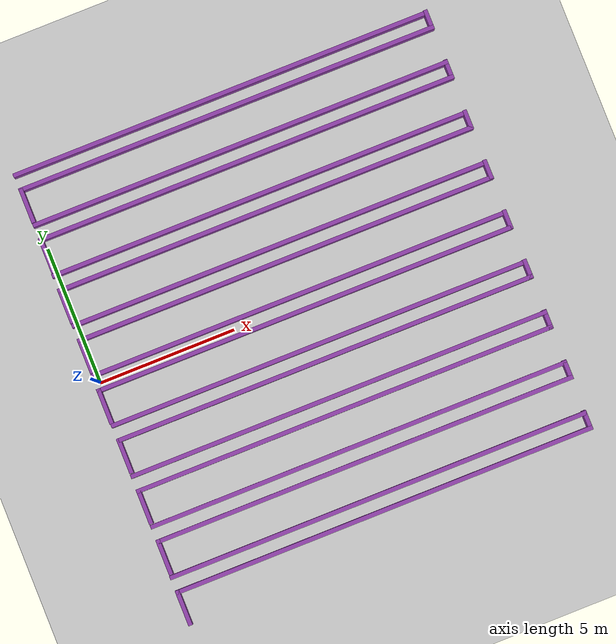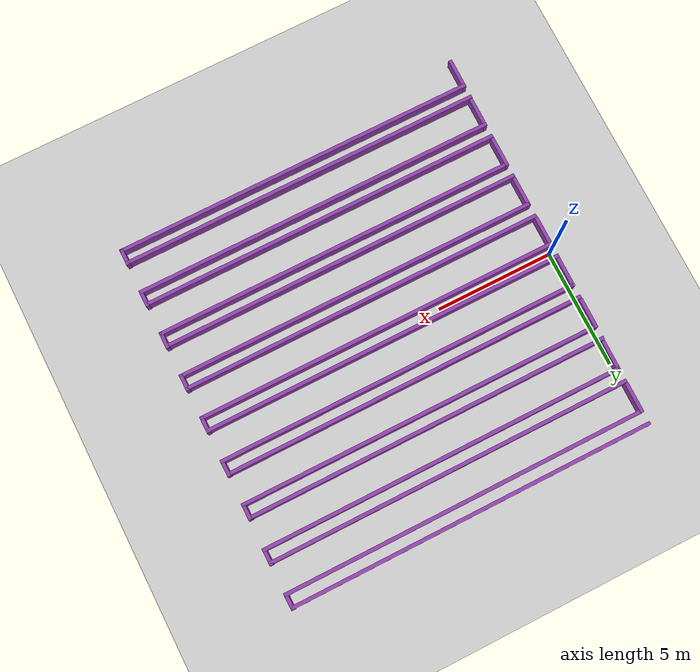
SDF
<sdf version="1.7">
 <world name="default">
  <light name="sun" type="directional">
   <pose>0 0 10 0 -0 0</pose>
   <diffuse>0.8 0.8 0.8 1</diffuse>
   <specular>0.2 0.2 0.2 1</specular>
   <attenuation>
    <range>1000</range>
    <constant>0.9</constant>
    <linear>0.01</linear>
    <quadratic>0.001</quadratic>
   </attenuation>
   <direction>-0.5 0.1 -0.9</direction>
   <spot><inner_angle>0</inner_angle><outer_angle>0</outer_angle><falloff>0</falloff></spot>
  </light>
  <model name="ground_plane">
   <static>1</static>
   <link name="link">
    <collision name="collision">
     <geometry><plane><normal>0 0 1</normal><size>100 100</size></plane></geometry>
     <surface>
      <contact><collide_bitmask>65535</collide_bitmask></contact>
      <friction><ode><mu>100</mu><mu2>50</mu2></ode></friction>
     </surface>
    </collision>
    <visual name="visual">
     <cast_shadows>0</cast_shadows>
     <geometry><plane><normal>0 0 1</normal><size>100 100</size></plane></geometry>
     <material>
      <script><uri>file://media/materials/scripts/gazebo.material</uri><name>Gazebo/Grey</name></script>
     </material>
    </visual>
   </link>
  </model>
  <gravity>0 0 -9.8</gravity>
  <magnetic_field>6e-06 2.3e-05 -4.2e-05</magnetic_field>
  <atmosphere type="adiabatic"/>
  <physics type="ode">
   <max_step_size>0.001</max_step_size>
   <real_time_factor>1</real_time_factor>
   <real_time_update_rate>1000</real_time_update_rate>
  </physics>
  <scene><ambient>0.4 0.4 0.4 1</ambient><background>0.7 0.7 0.7 1</background><shadows>1</shadows></scene>
  <audio><device>default</device></audio>
  <spherical_coordinates>
   <surface_model>EARTH_WGS84</surface_model>
   <latitude_deg>0</latitude_deg>
   <longitude_deg>0</longitude_deg>
   <elevation>0</elevation>
   <heading_deg>0</heading_deg>
  </spherical_coordinates>
  <model name="40cm_koridor">
   <pose>7.55598 -0.555984 0 0 -0 0</pose>
   <link name="Wall_2">
    <collision name="Wall_2_Collision">
     <geometry><box><size>15.513 0.15 0.6</size></box></geometry>
     <pose>0 0 0.3 0 -0 0</pose>
    </collision>
    <visual name="Wall_2_Visual">
     <pose>0 0 0.3 0 -0 0</pose>
     <geometry><box><size>15.513 0.15 0.6</size></box></geometry>
     <material>
      <script><uri>file://media/materials/scripts/gazebo.material</uri><name>Gazebo/Grey</name></script>
      <ambient>0.568627 0.254902 0.67451 1</ambient>
     </material>
     <meta><layer>0</layer></meta>
    </visual>
    <pose>0.0045 0.840984 0 0 -0 -3.14159</pose>
   </link>
   <link name="Wall_4">
    <collision name="Wall_4_Collision">
     <geometry><box><size>15.522 0.15 0.6</size></box></geometry>
     <pose>0 0 0.3 0 -0 0</pose>
    </collision>
    <visual name="Wall_4_Visual">
     <pose>0 0 0.3 0 -0 0</pose>
     <geometry><box><size>15.522 0.15 0.6</size></box></geometry>
     <material>
      <script><uri>file://media/materials/scripts/gazebo.material</uri><name>Gazebo/Grey</name></script>
      <ambient>0.568627 0.254902 0.67451 1</ambient>
     </material>
     <meta><layer>0</layer></meta>
    </visual>
    <pose>0 0.285984 0 0 -0 0</pose>
   </link>
   <link name="Wall_6">
    <collision name="Wall_6_Collision">
     <geometry><box><size>0.705 0.15 0.6</size></box></geometry>
     <pose>0 0 0.3 0 -0 0</pose>
    </collision>
    <visual name="Wall_6_Visual">
     <pose>0 0 0.3 0 -0 0</pose>
     <geometry><box><size>0.705 0.15 0.6</size></box></geometry>
     <material>
      <script><uri>file://media/materials/scripts/gazebo.material</uri><name>Gazebo/Grey</name></script>
      <ambient>0.568627 0.254902 0.67451 1</ambient>
     </material>
     <meta><layer>0</layer></meta>
    </visual>
    <pose>7.68598 0.585787 0 0 -0 -1.5708</pose>
   </link>
   <link name="Wall_9">
    <collision name="Wall_9_Collision">
     <geometry><box><size>1.29954 0.15 0.6</size></box></geometry>
     <pose>0 0 0.3 0 -0 0</pose>
    </collision>
    <visual name="Wall_9_Visual">
     <pose>0 0 0.3 0 -0 0</pose>
     <geometry><box><size>1.29954 0.15 0.6</size></box></geometry>
     <material>
      <script><uri>file://media/materials/scripts/gazebo.material</uri><name>Gazebo/Grey</name></script>
      <ambient>0.568627 0.254902 0.67451 1</ambient>
     </material>
     <meta><layer>0</layer></meta>
    </visual>
    <pose>-7.68598 -0.288516 0 0 -0 -1.5708</pose>
   </link>
   <static>1</static>
  </model>
  <model name="40cm_koridor_clone">
   <pose>7.56852 -2.41023 0 0 -0 0</pose>
   <link name="Wall_2">
    <collision name="Wall_2_Collision">
     <geometry><box><size>15.513 0.15 0.6</size></box></geometry>
     <pose>0 0 0.3 0 -0 0</pose>
    </collision>
    <visual name="Wall_2_Visual">
     <pose>0 0 0.3 0 -0 0</pose>
     <geometry><box><size>15.513 0.15 0.6</size></box></geometry>
     <material>
      <script><uri>file://media/materials/scripts/gazebo.material</uri><name>Gazebo/Grey</name></script>
      <ambient>0.568627 0.254902 0.67451 1</ambient>
     </material>
     <meta><layer>0</layer></meta>
    </visual>
    <pose>0.0045 0.840984 0 0 -0 -3.14159</pose>
   </link>
   <link name="Wall_4">
    <collision name="Wall_4_Collision">
     <geometry><box><size>15.522 0.15 0.6</size></box></geometry>
     <pose>0 0 0.3 0 -0 0</pose>
    </collision>
    <visual name="Wall_4_Visual">
     <pose>0 0 0.3 0 -0 0</pose>
     <geometry><box><size>15.522 0.15 0.6</size></box></geometry>
     <material>
      <script><uri>file://media/materials/scripts/gazebo.material</uri><name>Gazebo/Grey</name></script>
      <ambient>0.568627 0.254902 0.67451 1</ambient>
     </material>
     <meta><layer>0</layer></meta>
    </visual>
    <pose>0 0.285984 0 0 -0 0</pose>
   </link>
   <link name="Wall_6">
    <collision name="Wall_6_Collision">
     <geometry><box><size>0.705 0.15 0.6</size></box></geometry>
     <pose>0 0 0.3 0 -0 0</pose>
    </collision>
    <visual name="Wall_6_Visual">
     <pose>0 0 0.3 0 -0 0</pose>
     <geometry><box><size>0.705 0.15 0.6</size></box></geometry>
     <material>
      <script><uri>file://media/materials/scripts/gazebo.material</uri><name>Gazebo/Grey</name></script>
      <ambient>0.568627 0.254902 0.67451 1</ambient>
     </material>
     <meta><layer>0</layer></meta>
    </visual>
    <pose>7.68598 0.585787 0 0 -0 -1.5708</pose>
   </link>
   <link name="Wall_9">
    <collision name="Wall_9_Collision">
     <geometry><box><size>1.29954 0.15 0.6</size></box></geometry>
     <pose>0 0 0.3 0 -0 0</pose>
    </collision>
    <visual name="Wall_9_Visual">
     <pose>0 0 0.3 0 -0 0</pose>
     <geometry><box><size>1.29954 0.15 0.6</size></box></geometry>
     <material>
      <script><uri>file://media/materials/scripts/gazebo.material</uri><name>Gazebo/Grey</name></script>
      <ambient>0.568627 0.254902 0.67451 1</ambient>
     </material>
     <meta><layer>0</layer></meta>
    </visual>
    <pose>-7.68598 -0.288516 0 0 -0 -1.5708</pose>
   </link>
   <static>1</static>
  </model>
  <model name="40cm_koridor_clone_clone">
   <pose>7.55711 -4.2896 0 0 -0 0</pose>
   <link name="Wall_2">
    <collision name="Wall_2_Collision">
     <geometry><box><size>15.513 0.15 0.6</size></box></geometry>
     <pose>0 0 0.3 0 -0 0</pose>
    </collision>
    <visual name="Wall_2_Visual">
     <pose>0 0 0.3 0 -0 0</pose>
     <geometry><box><size>15.513 0.15 0.6</size></box></geometry>
     <material>
      <script><uri>file://media/materials/scripts/gazebo.material</uri><name>Gazebo/Grey</name></script>
      <ambient>0.568627 0.254902 0.67451 1</ambient>
     </material>
     <meta><layer>0</layer></meta>
    </visual>
    <pose>0.0045 0.840984 0 0 -0 -3.14159</pose>
   </link>
   <link name="Wall_4">
    <collision name="Wall_4_Collision">
     <geometry><box><size>15.522 0.15 0.6</size></box></geometry>
     <pose>0 0 0.3 0 -0 0</pose>
    </collision>
    <visual name="Wall_4_Visual">
     <pose>0 0 0.3 0 -0 0</pose>
     <geometry><box><size>15.522 0.15 0.6</size></box></geometry>
     <material>
      <script><uri>file://media/materials/scripts/gazebo.material</uri><name>Gazebo/Grey</name></script>
      <ambient>0.568627 0.254902 0.67451 1</ambient>
     </material>
     <meta><layer>0</layer></meta>
    </visual>
    <pose>0 0.285984 0 0 -0 0</pose>
   </link>
   <link name="Wall_6">
    <collision name="Wall_6_Collision">
     <geometry><box><size>0.705 0.15 0.6</size></box></geometry>
     <pose>0 0 0.3 0 -0 0</pose>
    </collision>
    <visual name="Wall_6_Visual">
     <pose>0 0 0.3 0 -0 0</pose>
     <geometry><box><size>0.705 0.15 0.6</size></box></geometry>
     <material>
      <script><uri>file://media/materials/scripts/gazebo.material</uri><name>Gazebo/Grey</name></script>
      <ambient>0.568627 0.254902 0.67451 1</ambient>
     </material>
     <meta><layer>0</layer></meta>
    </visual>
    <pose>7.68598 0.585787 0 0 -0 -1.5708</pose>
   </link>
   <link name="Wall_9">
    <collision name="Wall_9_Collision">
     <geometry><box><size>1.29954 0.15 0.6</size></box></geometry>
     <pose>0 0 0.3 0 -0 0</pose>
    </collision>
    <visual name="Wall_9_Visual">
     <pose>0 0 0.3 0 -0 0</pose>
     <geometry><box><size>1.29954 0.15 0.6</size></box></geometry>
     <material>
      <script><uri>file://media/materials/scripts/gazebo.material</uri><name>Gazebo/Grey</name></script>
      <ambient>0.568627 0.254902 0.67451 1</ambient>
     </material>
     <meta><layer>0</layer></meta>
    </visual>
    <pose>-7.68598 -0.288516 0 0 -0 -1.5708</pose>
   </link>
   <static>1</static>
  </model>
  <model name="40cm_koridor_clone_0">
   <pose>7.57165 1.3117 0 0 -0 0</pose>
   <link name="Wall_2">
    <collision name="Wall_2_Collision">
     <geometry><box><size>15.513 0.15 0.6</size></box></geometry>
     <pose>0 0 0.3 0 -0 0</pose>
    </collision>
    <visual name="Wall_2_Visual">
     <pose>0 0 0.3 0 -0 0</pose>
     <geometry><box><size>15.513 0.15 0.6</size></box></geometry>
     <material>
      <script><uri>file://media/materials/scripts/gazebo.material</uri><name>Gazebo/Grey</name></script>
      <ambient>0.568627 0.254902 0.67451 1</ambient>
     </material>
     <meta><layer>0</layer></meta>
    </visual>
    <pose>0.0045 0.840984 0 0 -0 -3.14159</pose>
   </link>
   <link name="Wall_4">
    <collision name="Wall_4_Collision">
     <geometry><box><size>15.522 0.15 0.6</size></box></geometry>
     <pose>0 0 0.3 0 -0 0</pose>
    </collision>
    <visual name="Wall_4_Visual">
     <pose>0 0 0.3 0 -0 0</pose>
     <geometry><box><size>15.522 0.15 0.6</size></box></geometry>
     <material>
      <script><uri>file://media/materials/scripts/gazebo.material</uri><name>Gazebo/Grey</name></script>
      <ambient>0.568627 0.254902 0.67451 1</ambient>
     </material>
     <meta><layer>0</layer></meta>
    </visual>
    <pose>0 0.285984 0 0 -0 0</pose>
   </link>
   <link name="Wall_6">
    <collision name="Wall_6_Collision">
     <geometry><box><size>0.705 0.15 0.6</size></box></geometry>
     <pose>0 0 0.3 0 -0 0</pose>
    </collision>
    <visual name="Wall_6_Visual">
     <pose>0 0 0.3 0 -0 0</pose>
     <geometry><box><size>0.705 0.15 0.6</size></box></geometry>
     <material>
      <script><uri>file://media/materials/scripts/gazebo.material</uri><name>Gazebo/Grey</name></script>
      <ambient>0.568627 0.254902 0.67451 1</ambient>
     </material>
     <meta><layer>0</layer></meta>
    </visual>
    <pose>7.68598 0.585787 0 0 -0 -1.5708</pose>
   </link>
   <link name="Wall_9">
    <collision name="Wall_9_Collision">
     <geometry><box><size>1.29954 0.15 0.6</size></box></geometry>
     <pose>0 0 0.3 0 -0 0</pose>
    </collision>
    <visual name="Wall_9_Visual">
     <pose>0 0 0.3 0 -0 0</pose>
     <geometry><box><size>1.29954 0.15 0.6</size></box></geometry>
     <material>
      <script><uri>file://media/materials/scripts/gazebo.material</uri><name>Gazebo/Grey</name></script>
      <ambient>0.568627 0.254902 0.67451 1</ambient>
     </material>
     <meta><layer>0</layer></meta>
    </visual>
    <pose>-7.68598 -0.288516 0 0 -0 -1.5708</pose>
   </link>
   <static>1</static>
  </model>
  <model name="40cm_koridor_clone_0_clone">
   <pose>7.56797 3.17924 0 0 -0 0</pose>
   <link name="Wall_2">
    <collision name="Wall_2_Collision">
     <geometry><box><size>15.513 0.15 0.6</size></box></geometry>
     <pose>0 0 0.3 0 -0 0</pose>
    </collision>
    <visual name="Wall_2_Visual">
     <pose>0 0 0.3 0 -0 0</pose>
     <geometry><box><size>15.513 0.15 0.6</size></box></geometry>
     <material>
      <script><uri>file://media/materials/scripts/gazebo.material</uri><name>Gazebo/Grey</name></script>
      <ambient>0.568627 0.254902 0.67451 1</ambient>
     </material>
     <meta><layer>0</layer></meta>
    </visual>
    <pose>0.0045 0.840984 0 0 -0 -3.14159</pose>
   </link>
   <link name="Wall_4">
    <collision name="Wall_4_Collision">
     <geometry><box><size>15.522 0.15 0.6</size></box></geometry>
     <pose>0 0 0.3 0 -0 0</pose>
    </collision>
    <visual name="Wall_4_Visual">
     <pose>0 0 0.3 0 -0 0</pose>
     <geometry><box><size>15.522 0.15 0.6</size></box></geometry>
     <material>
      <script><uri>file://media/materials/scripts/gazebo.material</uri><name>Gazebo/Grey</name></script>
      <ambient>0.568627 0.254902 0.67451 1</ambient>
     </material>
     <meta><layer>0</layer></meta>
    </visual>
    <pose>0 0.285984 0 0 -0 0</pose>
   </link>
   <link name="Wall_6">
    <collision name="Wall_6_Collision">
     <geometry><box><size>0.705 0.15 0.6</size></box></geometry>
     <pose>0 0 0.3 0 -0 0</pose>
    </collision>
    <visual name="Wall_6_Visual">
     <pose>0 0 0.3 0 -0 0</pose>
     <geometry><box><size>0.705 0.15 0.6</size></box></geometry>
     <material>
      <script><uri>file://media/materials/scripts/gazebo.material</uri><name>Gazebo/Grey</name></script>
      <ambient>0.568627 0.254902 0.67451 1</ambient>
     </material>
     <meta><layer>0</layer></meta>
    </visual>
    <pose>7.68598 0.585787 0 0 -0 -1.5708</pose>
   </link>
   <link name="Wall_9">
    <collision name="Wall_9_Collision">
     <geometry><box><size>1.29954 0.15 0.6</size></box></geometry>
     <pose>0 0 0.3 0 -0 0</pose>
    </collision>
    <visual name="Wall_9_Visual">
     <pose>0 0 0.3 0 -0 0</pose>
     <geometry><box><size>1.29954 0.15 0.6</size></box></geometry>
     <material>
      <script><uri>file://media/materials/scripts/gazebo.material</uri><name>Gazebo/Grey</name></script>
      <ambient>0.568627 0.254902 0.67451 1</ambient>
     </material>
     <meta><layer>0</layer></meta>
    </visual>
    <pose>-7.68598 -0.288516 0 0 -0 -1.5708</pose>
   </link>
   <static>1</static>
  </model>
  <model name="40cm_koridor_clone_0_clone_clone">
   <pose>7.5984 5.06275 0 0 -0 0</pose>
   <link name="Wall_2">
    <collision name="Wall_2_Collision">
     <geometry><box><size>15.513 0.15 0.6</size></box></geometry>
     <pose>0 0 0.3 0 -0 0</pose>
    </collision>
    <visual name="Wall_2_Visual">
     <pose>0 0 0.3 0 -0 0</pose>
     <geometry><box><size>15.513 0.15 0.6</size></box></geometry>
     <material>
      <script><uri>file://media/materials/scripts/gazebo.material</uri><name>Gazebo/Grey</name></script>
      <ambient>0.568627 0.254902 0.67451 1</ambient>
     </material>
     <meta><layer>0</layer></meta>
    </visual>
    <pose>0.0045 0.840984 0 0 -0 -3.14159</pose>
   </link>
   <link name="Wall_4">
    <collision name="Wall_4_Collision">
     <geometry><box><size>15.522 0.15 0.6</size></box></geometry>
     <pose>0 0 0.3 0 -0 0</pose>
    </collision>
    <visual name="Wall_4_Visual">
     <pose>0 0 0.3 0 -0 0</pose>
     <geometry><box><size>15.522 0.15 0.6</size></box></geometry>
     <material>
      <script><uri>file://media/materials/scripts/gazebo.material</uri><name>Gazebo/Grey</name></script>
      <ambient>0.568627 0.254902 0.67451 1</ambient>
     </material>
     <meta><layer>0</layer></meta>
    </visual>
    <pose>0 0.285984 0 0 -0 0</pose>
   </link>
   <link name="Wall_6">
    <collision name="Wall_6_Collision">
     <geometry><box><size>0.705 0.15 0.6</size></box></geometry>
     <pose>0 0 0.3 0 -0 0</pose>
    </collision>
    <visual name="Wall_6_Visual">
     <pose>0 0 0.3 0 -0 0</pose>
     <geometry><box><size>0.705 0.15 0.6</size></box></geometry>
     <material>
      <script><uri>file://media/materials/scripts/gazebo.material</uri><name>Gazebo/Grey</name></script>
      <ambient>0.568627 0.254902 0.67451 1</ambient>
     </material>
     <meta><layer>0</layer></meta>
    </visual>
    <pose>7.68598 0.585787 0 0 -0 -1.5708</pose>
   </link>
   <link name="Wall_9">
    <collision name="Wall_9_Collision">
     <geometry><box><size>1.29954 0.15 0.6</size></box></geometry>
     <pose>0 0 0.3 0 -0 0</pose>
    </collision>
    <visual name="Wall_9_Visual">
     <pose>0 0 0.3 0 -0 0</pose>
     <geometry><box><size>1.29954 0.15 0.6</size></box></geometry>
     <material>
      <script><uri>file://media/materials/scripts/gazebo.material</uri><name>Gazebo/Grey</name></script>
      <ambient>0.568627 0.254902 0.67451 1</ambient>
     </material>
     <meta><layer>0</layer></meta>
    </visual>
    <pose>-7.68598 -0.288516 0 0 -0 -1.5708</pose>
   </link>
   <static>1</static>
  </model>
  <model name="40cm_koridor_clone_clone_clone">
   <pose>7.5548 -6.1659 0 0 -0 0</pose>
   <link name="Wall_2">
    <collision name="Wall_2_Collision">
     <geometry><box><size>15.513 0.15 0.6</size></box></geometry>
     <pose>0 0 0.3 0 -0 0</pose>
    </collision>
    <visual name="Wall_2_Visual">
     <pose>0 0 0.3 0 -0 0</pose>
     <geometry><box><size>15.513 0.15 0.6</size></box></geometry>
     <material>
      <script><uri>file://media/materials/scripts/gazebo.material</uri><name>Gazebo/Grey</name></script>
      <ambient>0.568627 0.254902 0.67451 1</ambient>
     </material>
     <meta><layer>0</layer></meta>
    </visual>
    <pose>0.0045 0.840984 0 0 -0 -3.14159</pose>
   </link>
   <link name="Wall_4">
    <collision name="Wall_4_Collision">
     <geometry><box><size>15.522 0.15 0.6</size></box></geometry>
     <pose>0 0 0.3 0 -0 0</pose>
    </collision>
    <visual name="Wall_4_Visual">
     <pose>0 0 0.3 0 -0 0</pose>
     <geometry><box><size>15.522 0.15 0.6</size></box></geometry>
     <material>
      <script><uri>file://media/materials/scripts/gazebo.material</uri><name>Gazebo/Grey</name></script>
      <ambient>0.568627 0.254902 0.67451 1</ambient>
     </material>
     <meta><layer>0</layer></meta>
    </visual>
    <pose>0 0.285984 0 0 -0 0</pose>
   </link>
   <link name="Wall_6">
    <collision name="Wall_6_Collision">
     <geometry><box><size>0.705 0.15 0.6</size></box></geometry>
     <pose>0 0 0.3 0 -0 0</pose>
    </collision>
    <visual name="Wall_6_Visual">
     <pose>0 0 0.3 0 -0 0</pose>
     <geometry><box><size>0.705 0.15 0.6</size></box></geometry>
     <material>
      <script><uri>file://media/materials/scripts/gazebo.material</uri><name>Gazebo/Grey</name></script>
      <ambient>0.568627 0.254902 0.67451 1</ambient>
     </material>
     <meta><layer>0</layer></meta>
    </visual>
    <pose>7.68598 0.585787 0 0 -0 -1.5708</pose>
   </link>
   <link name="Wall_9">
    <collision name="Wall_9_Collision">
     <geometry><box><size>1.29954 0.15 0.6</size></box></geometry>
     <pose>0 0 0.3 0 -0 0</pose>
    </collision>
    <visual name="Wall_9_Visual">
     <pose>0 0 0.3 0 -0 0</pose>
     <geometry><box><size>1.29954 0.15 0.6</size></box></geometry>
     <material>
      <script><uri>file://media/materials/scripts/gazebo.material</uri><name>Gazebo/Grey</name></script>
      <ambient>0.568627 0.254902 0.67451 1</ambient>
     </material>
     <meta><layer>0</layer></meta>
    </visual>
    <pose>-7.68598 -0.288516 0 0 -0 -1.5708</pose>
   </link>
   <static>1</static>
  </model>
  <model name="40cm_koridor_clone_clone_clone_clone">
   <pose>7.53391 -8.03943 0 0 -0 0</pose>
   <link name="Wall_2">
    <collision name="Wall_2_Collision">
     <geometry><box><size>15.513 0.15 0.6</size></box></geometry>
     <pose>0 0 0.3 0 -0 0</pose>
    </collision>
    <visual name="Wall_2_Visual">
     <pose>0 0 0.3 0 -0 0</pose>
     <geometry><box><size>15.513 0.15 0.6</size></box></geometry>
     <material>
      <script><uri>file://media/materials/scripts/gazebo.material</uri><name>Gazebo/Grey</name></script>
      <ambient>0.568627 0.254902 0.67451 1</ambient>
     </material>
     <meta><layer>0</layer></meta>
    </visual>
    <pose>0.0045 0.840984 0 0 -0 -3.14159</pose>
   </link>
   <link name="Wall_4">
    <collision name="Wall_4_Collision">
     <geometry><box><size>15.522 0.15 0.6</size></box></geometry>
     <pose>0 0 0.3 0 -0 0</pose>
    </collision>
    <visual name="Wall_4_Visual">
     <pose>0 0 0.3 0 -0 0</pose>
     <geometry><box><size>15.522 0.15 0.6</size></box></geometry>
     <material>
      <script><uri>file://media/materials/scripts/gazebo.material</uri><name>Gazebo/Grey</name></script>
      <ambient>0.568627 0.254902 0.67451 1</ambient>
     </material>
     <meta><layer>0</layer></meta>
    </visual>
    <pose>0 0.285984 0 0 -0 0</pose>
   </link>
   <link name="Wall_6">
    <collision name="Wall_6_Collision">
     <geometry><box><size>0.705 0.15 0.6</size></box></geometry>
     <pose>0 0 0.3 0 -0 0</pose>
    </collision>
    <visual name="Wall_6_Visual">
     <pose>0 0 0.3 0 -0 0</pose>
     <geometry><box><size>0.705 0.15 0.6</size></box></geometry>
     <material>
      <script><uri>file://media/materials/scripts/gazebo.material</uri><name>Gazebo/Grey</name></script>
      <ambient>0.568627 0.254902 0.67451 1</ambient>
     </material>
     <meta><layer>0</layer></meta>
    </visual>
    <pose>7.68598 0.585787 0 0 -0 -1.5708</pose>
   </link>
   <link name="Wall_9">
    <collision name="Wall_9_Collision">
     <geometry><box><size>1.29954 0.15 0.6</size></box></geometry>
     <pose>0 0 0.3 0 -0 0</pose>
    </collision>
    <visual name="Wall_9_Visual">
     <pose>0 0 0.3 0 -0 0</pose>
     <geometry><box><size>1.29954 0.15 0.6</size></box></geometry>
     <material>
      <script><uri>file://media/materials/scripts/gazebo.material</uri><name>Gazebo/Grey</name></script>
      <ambient>0.568627 0.254902 0.67451 1</ambient>
     </material>
     <meta><layer>0</layer></meta>
    </visual>
    <pose>-7.68598 -0.288516 0 0 -0 -1.5708</pose>
   </link>
   <static>1</static>
  </model>
  <model name="40cm_koridor_clone_clone_clone_clone_0">
   <pose>7.59608 6.92791 0 0 -0 0</pose>
   <link name="Wall_2">
    <collision name="Wall_2_Collision">
     <geometry><box><size>15.513 0.15 0.6</size></box></geometry>
     <pose>0 0 0.3 0 -0 0</pose>
    </collision>
    <visual name="Wall_2_Visual">
     <pose>0 0 0.3 0 -0 0</pose>
     <geometry><box><size>15.513 0.15 0.6</size></box></geometry>
     <material>
      <script><uri>file://media/materials/scripts/gazebo.material</uri><name>Gazebo/Grey</name></script>
      <ambient>0.568627 0.254902 0.67451 1</ambient>
     </material>
     <meta><layer>0</layer></meta>
    </visual>
    <pose>0.0045 0.840984 0 0 -0 -3.14159</pose>
   </link>
   <link name="Wall_4">
    <collision name="Wall_4_Collision">
     <geometry><box><size>15.522 0.15 0.6</size></box></geometry>
     <pose>0 0 0.3 0 -0 0</pose>
    </collision>
    <visual name="Wall_4_Visual">
     <pose>0 0 0.3 0 -0 0</pose>
     <geometry><box><size>15.522 0.15 0.6</size></box></geometry>
     <material>
      <script><uri>file://media/materials/scripts/gazebo.material</uri><name>Gazebo/Grey</name></script>
      <ambient>0.568627 0.254902 0.67451 1</ambient>
     </material>
     <meta><layer>0</layer></meta>
    </visual>
    <pose>0 0.285984 0 0 -0 0</pose>
   </link>
   <link name="Wall_6">
    <collision name="Wall_6_Collision">
     <geometry><box><size>0.705 0.15 0.6</size></box></geometry>
     <pose>0 0 0.3 0 -0 0</pose>
    </collision>
    <visual name="Wall_6_Visual">
     <pose>0 0 0.3 0 -0 0</pose>
     <geometry><box><size>0.705 0.15 0.6</size></box></geometry>
     <material>
      <script><uri>file://media/materials/scripts/gazebo.material</uri><name>Gazebo/Grey</name></script>
      <ambient>0.568627 0.254902 0.67451 1</ambient>
     </material>
     <meta><layer>0</layer></meta>
    </visual>
    <pose>7.68598 0.585787 0 0 -0 -1.5708</pose>
   </link>
   <link name="Wall_9">
    <collision name="Wall_9_Collision">
     <geometry><box><size>1.29954 0.15 0.6</size></box></geometry>
     <pose>0 0 0.3 0 -0 0</pose>
    </collision>
    <visual name="Wall_9_Visual">
     <pose>0 0 0.3 0 -0 0</pose>
     <geometry><box><size>1.29954 0.15 0.6</size></box></geometry>
     <material>
      <script><uri>file://media/materials/scripts/gazebo.material</uri><name>Gazebo/Grey</name></script>
      <ambient>0.568627 0.254902 0.67451 1</ambient>
     </material>
     <meta><layer>0</layer></meta>
    </visual>
    <pose>-7.68598 -0.288516 0 0 -0 -1.5708</pose>
   </link>
   <static>1</static>
  </model>
 </world>
</sdf>
